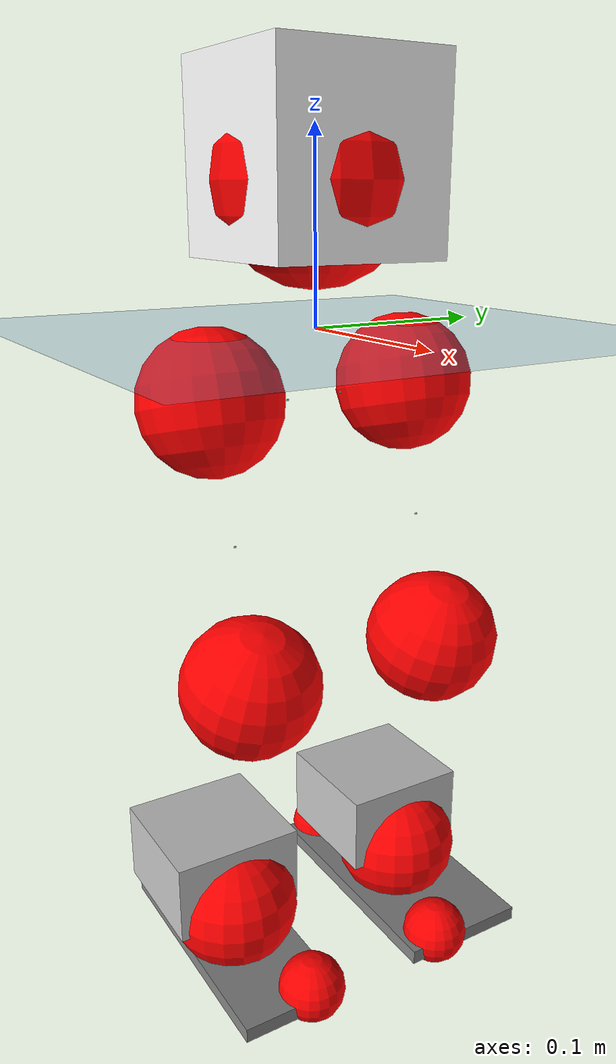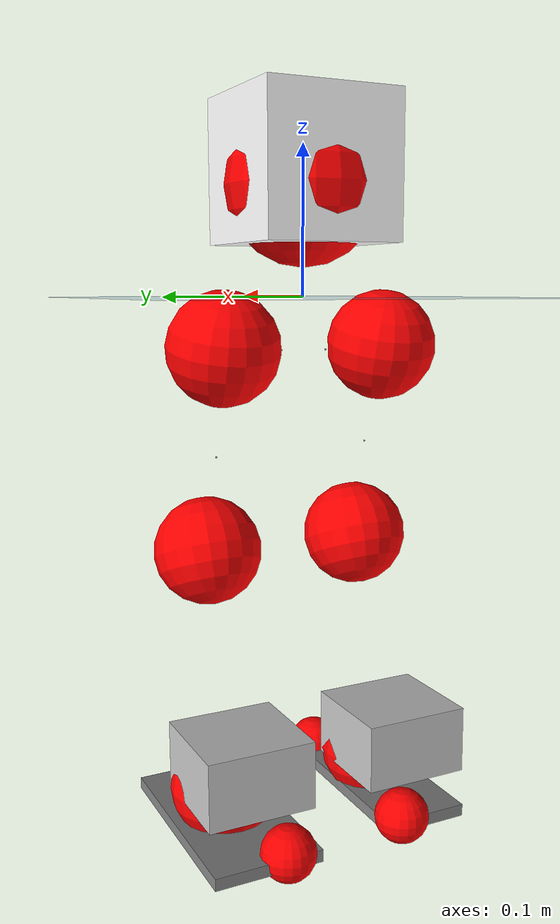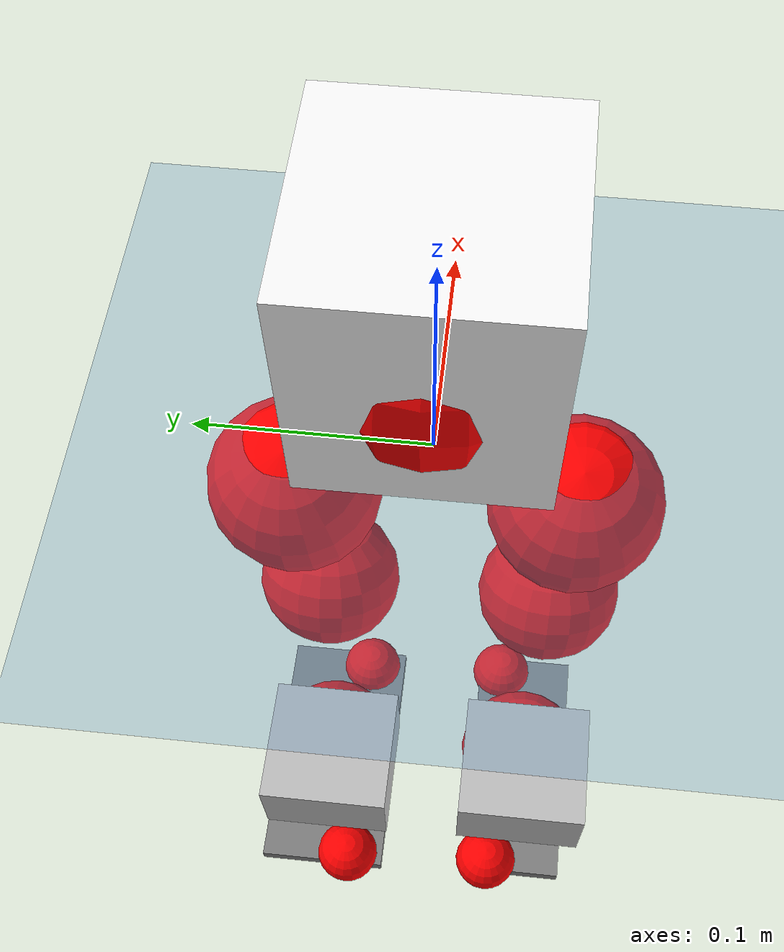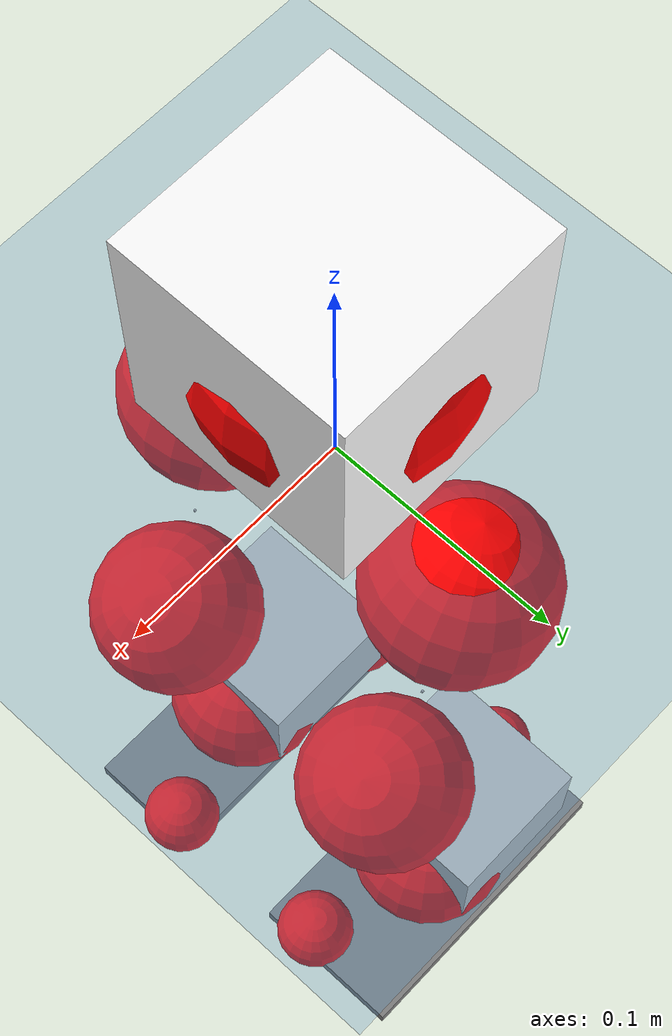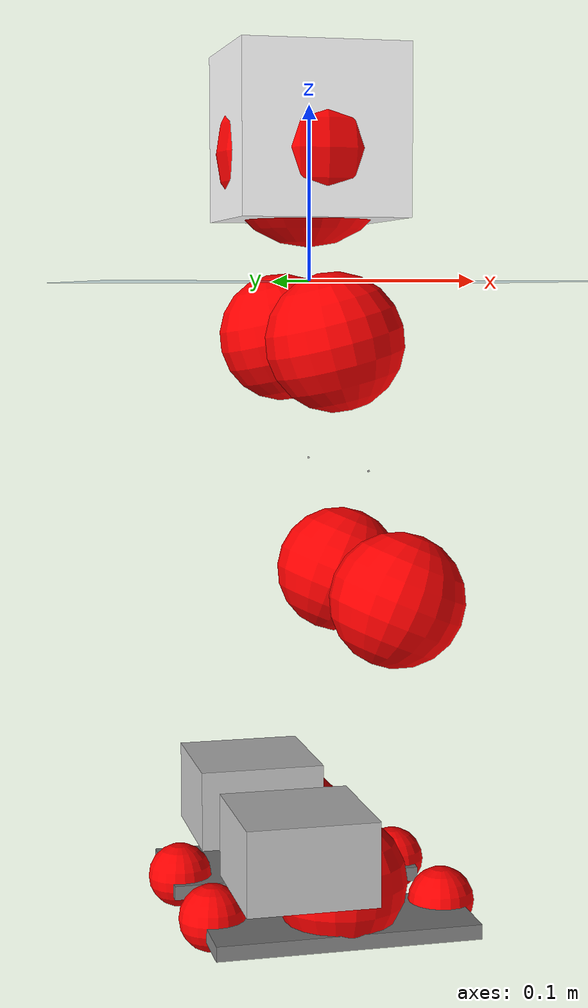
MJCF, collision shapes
<mujoco model="pi_12dof_release_v1">
  <compiler angle="radian" assetdir="assets" balanceinertia="true" inertiafromgeom="false"/>

  <option timestep="0.005" density="1.2" viscosity="2e-05"/>

  <size nkey="1"/>

  <visual>
    <quality shadowsize="8192"/>
    <map shadowclip="0.5"/>
  </visual>

  <default>
    <default class="/">
      <joint armature="0.01" damping="0.01" frictionloss="0.01"/>
      <geom contype="0" conaffinity="0" group="1" solref="-1000 -80"/>
      <site size="0.01 0.005 0.005" group="5"/>
      <general forcelimited="true" biastype="affine" gainprm="20" biasprm="0 -20 -0.5"/>
      <default class="foot">
        <geom size="0.0845 0.036 0.005" type="box" condim="6" group="4" priority="1" friction="0.9 0.2 0.2" solimp="0.015 1 0.005"/>
      </default>
      <default class="reward_collision_sphere">
        <geom group="5" rgba="1 0 0 1"/>
      </default>
    </default>
  </default>

  <asset>
    <texture type="skybox" colorspace="auto" name="//unnamed_texture_0" builtin="gradient" rgb1="0.95 0.95 0.95" rgb2="0.95 0.95 0.95" width="100" height="600"/>
    <texture type="2d" colorspace="auto" name="texplane" builtin="checker" rgb1="0.345 0.575 0.748" rgb2="0.345 0.575 0.748" markrgb="1 1 1" width="512" height="512"/>
    <material name="MatPlane" class="/" texture="texplane" texuniform="true" texrepeat="2 2" specular="0.9"/>
    <mesh name="baselink_1" class="/" file="baselink_1.STL"/>
    <mesh name="r_hip_pitch_link" class="/" file="r_hip_pitch_link.STL"/>
    <mesh name="r_hip_roll_link" class="/" file="r_hip_roll_link.STL"/>
    <mesh name="r_thigh_link" class="/" file="r_thigh_link.STL"/>
    <mesh name="r_calf_link" class="/" file="r_calf_link.STL"/>
    <mesh name="r_ankle_pitch_link" class="/" file="r_ankle_pitch_link.STL"/>
    <mesh name="r_ankle_roll_link" class="/" file="r_ankle_roll_link.STL"/>
    <mesh name="l_hip_pitch_link" class="/" file="l_hip_pitch_link.STL"/>
    <mesh name="l_hip_roll_link" class="/" file="l_hip_roll_link.STL"/>
    <mesh name="l_thigh_link" class="/" file="l_thigh_link.STL"/>
    <mesh name="l_calf_link" class="/" file="l_calf_link.STL"/>
    <mesh name="l_ankle_pitch_link" class="/" file="l_ankle_pitch_link.STL"/>
    <mesh name="l_ankle_roll_link" class="/" file="l_ankle_roll_link.STL"/>
  </asset>

  <worldbody>
    <geom name="floor" class="/" size="100 100 0.125" type="plane" group="0" material="MatPlane"/>
    <light name="toplight_shadow" class="/" pos="0 0 5" dir="0.0990148 0.0990148 -0.990148" type="directional" ambient="0.04 0.04 0.04" diffuse="0.55 0.55 0.55" specular="0.12 0.12 0.12"/>
    <light name="toplight_fill" class="/" pos="0 0 5" dir="0.0990148 0.0990148 -0.990148" type="directional" castshadow="false" ambient="0.04 0.04 0.04" diffuse="0.3 0.3 0.3" specular="0.08 0.08 0.08"/>
    <body name="trunk" pos="-0.000842944 -8.98243e-05 -0.00258458" quat="0.999999 -0.00130331 -0.000188029 -0.000355171">
      <inertial pos="0.000379538 0.00171251 0.043607" quat="0.70291 0.00954931 0.0180386 0.710986" mass="1.93342" diaginertia="0.0104739 0.00342574 0.00601877"/>
      <joint name="//unnamed_joint_0" type="free"/>
      <geom name="//unnamed_geom_1" class="/" type="mesh" density="0" rgba="1 1 1 1" mesh="baselink_1"/>
      <geom name="//unnamed_geom_2" class="/" size="0.048202 0.048202 0.048202" pos="0 0 0.0855341" type="box" rgba="1 1 1 1"/>
      <geom name="//unnamed_geom_3" class="reward_collision_sphere" size="0.0530222" pos="0 0 0.0748424"/>
      <site name="imu" class="/" pos="-0.0053616 0.0085162 -0.0130021" size="0.00964039"/>
      <camera name="track" class="/" pos="0 -1.63412 0" quat="0.707107 0.707107 0 0" mode="trackcom"/>
      <camera name="ego_camera" class="/" pos="0.075441 0 0.192452" quat="-0.5 -0.5 0.5 0.5"/>
      <body name="r_hip_pitch_link" pos="0.00242812 -0.018066 -0.0333836" quat="0.992198 8.12447e-07 -0.124675 3.36932e-06">
        <inertial pos="-0.00173896 -0.0461614 -0.00260993" quat="-0.0114698 0.700896 -0.0205417 0.712875" mass="0.324131" diaginertia="0.000112875 3.5248e-05 0.000113938"/>
        <joint name="r_hip_pitch_joint" class="/" pos="0 0 0" axis="-0.00340276 -0.999992 -0.00219705" range="-1.77166 1.26494" armature="0.00983338" damping="0.0121557" frictionloss="0.00913574"/>
        <geom name="//unnamed_geom_4" class="/" type="mesh" density="0" rgba="0.75294 0.75294 0.75294 1" mesh="r_hip_pitch_link"/>
        <geom name="//unnamed_geom_5" class="/" size="0.00048202 0.00048202 0.00048202" type="box" rgba="0.75294 0.75294 0.75294 1"/>
        <body name="r_hip_roll_link" pos="-0.00158156 -0.0436244 0.00264373" quat="1 -0.000146668 -0.000330612 -0.000304202">
          <inertial pos="-0.00223267 2.42997e-05 -0.0638368" quat="0.70604 -0.0809581 -0.0823259 0.698696" mass="0.332087" diaginertia="0.000327937 9.77653e-05 0.000167495"/>
          <joint name="r_hip_roll_joint" class="/" pos="0 0 0" axis="-0.99993 0.00522015 -0.0105809" stiffness="0.00206818" range="-0.125102 0.505568" armature="0.0084653" damping="0.0101313" frictionloss="0.0105307"/>
          <geom name="//unnamed_geom_6" class="/" type="mesh" density="0" rgba="0.75294 0.75294 0.75294 1" mesh="r_hip_roll_link"/>
          <geom name="//unnamed_geom_7" class="/" size="0.00048202 0.00048202 0.00048202" type="box" rgba="0.75294 0.75294 0.75294 1"/>
          <geom name="//unnamed_geom_8" class="reward_collision_sphere" size="0.0385616"/>
          <body name="r_thigh_link" pos="0.00135105 0.00155621 -0.0742216" quat="1 0.000305349 0.000495695 3.91907e-05">
            <inertial pos="-0.00200402 -0.00191158 -0.0517315" quat="0.738097 0.674694 0.000370966 -0.000726841" mass="0.100632" diaginertia="0.00012354 3.40426e-05 8.04811e-05"/>
            <joint name="r_thigh_joint" class="/" pos="0 0 0" axis="0.00297922 0.0029946 -0.999991" stiffness="0.00229322" range="-0.324843 0.646857" armature="0.00856021" damping="0.0165936" frictionloss="0.0101531"/>
            <geom name="//unnamed_geom_9" class="/" type="mesh" density="0" rgba="0.75294 0.75294 0.75294 1" mesh="r_thigh_link"/>
            <geom name="//unnamed_geom_10" class="/" size="0.00048202 0.00048202 0.00048202" type="box" rgba="0.75294 0.75294 0.75294 1"/>
            <body name="r_calf_link" pos="-0.00203207 -0.00133043 -0.0749469" quat="0.947412 -0.000981564 0.320015 -0.000255465">
              <inertial pos="-0.00105783 -0.00069155 -0.0750333" quat="0.999892 0.00168988 0.0106088 0.0100303" mass="0.756252" diaginertia="0.00359659 0.0012724 0.000242287"/>
              <joint name="r_calf_joint" class="/" pos="0 0 0" axis="2.30067e-05 -0.999995 -0.00306619" stiffness="0.000307022" range="-1.65091 0.675446" armature="0.00958473" damping="0.0109638" frictionloss="0.00945294"/>
              <geom name="//unnamed_geom_11" class="/" type="mesh" density="0" rgba="0.75294 0.75294 0.75294 1" mesh="r_calf_link"/>
              <geom name="//unnamed_geom_12" class="/" size="0.00048202 0.00048202 0.00048202" type="box" rgba="0.75294 0.75294 0.75294 1"/>
              <geom name="//unnamed_geom_13" class="reward_collision_sphere" size="0.0385616"/>
              <body name="r_ankle_pitch_link" pos="0.00176965 3.38152e-05 -0.150842" quat="0.980067 -0.000491962 -0.198669 -5.90238e-05">
                <inertial pos="0.00385925 0.0029534 -3.89823e-05" quat="0.00336276 0.709237 -0.00255404 0.704957" mass="0.162503" diaginertia="0.000318184 7.79865e-05 0.000168594"/>
                <joint name="r_ankle_pitch_joint" class="/" pos="0 0 0" axis="0.00348542 -0.999963 0.00782335" range="-1.32728 0.505556" armature="0.0095554" damping="0.0218672" frictionloss="0.00914211"/>
                <geom name="//unnamed_geom_14" class="/" type="mesh" density="0" rgba="0.75294 0.75294 0.75294 1" mesh="r_ankle_pitch_link"/>
                <geom name="//unnamed_geom_15" class="/" size="0.0375975 0.0385616 0.024101" type="box" rgba="0.75294 0.75294 0.75294 1"/>
                <body name="r_ankle_roll_link" pos="0.0747455 0.00177455 0.000808792" quat="1 -0.000130792 0.000464551 -0.000312339">
                  <inertial pos="-0.0231967 -0.00261922 -0.013025" quat="0.555222 0.428917 0.444922 0.5566" mass="0.4546" diaginertia="0.00112482 0.000375182 0.000372676"/>
                  <joint name="r_ankle_roll_joint" class="/" pos="0 0 0" axis="-0.999999 -0.00136165 0.000500575" range="-0.197879 0.186759" armature="0.00831915" damping="0" frictionloss="0.00833138"/>
                  <geom name="//unnamed_geom_16" class="/" type="mesh" density="0" rgba="0.75294 0.75294 0.75294 1" mesh="r_ankle_roll_link"/>
                  <geom name="//unnamed_geom_17" class="/" type="mesh" rgba="0.75294 0.75294 0.75294 1" mesh="r_ankle_roll_link"/>
                  <geom name="right_foot" class="foot" size="0.0759898 0.0307852 0.00428541" pos="-0.0512999 0 -0.0470438"/>
                  <geom name="//unnamed_geom_19" class="reward_collision_sphere" size="0.0385616" pos="-0.050294 0 -0.0213835"/>
                  <geom name="//unnamed_geom_20" class="reward_collision_sphere" size="0.0192808" pos="0.0150882 0.0163412 -0.0427671"/>
                  <geom name="//unnamed_geom_21" class="reward_collision_sphere" size="0.0192808" pos="-0.120706 0.0163412 -0.0427671"/>
                  <site name="right_foot" class="foot" pos="-0.0512999 0 -0.0470438" size="0.00964039"/>
                </body>
              </body>
            </body>
          </body>
        </body>
      </body>
      <body name="l_hip_pitch_link" pos="-0.000514601 0.016918 -0.0329112" quat="0.992213 0.000143795 -0.124554 4.3536e-06">
        <inertial pos="0.000483035 0.0412007 -0.00238191" quat="-0.0390504 0.706158 0.0285162 0.706401" mass="0.344665" diaginertia="0.000127744 3.76332e-05 0.000133346"/>
        <joint name="l_hip_pitch_joint" class="/" pos="0 0 0" axis="0.0148117 0.99989 -5.89421e-05" range="-1.29915 1.72817" armature="0.00958147" damping="0" frictionloss="0.0102892"/>
        <geom name="//unnamed_geom_22" class="/" type="mesh" density="0" rgba="0.75294 0.75294 0.75294 1" mesh="l_hip_pitch_link"/>
        <geom name="//unnamed_geom_23" class="/" size="0.00048202 0.00048202 0.00048202" type="box" rgba="0.75294 0.75294 0.75294 1"/>
        <body name="l_hip_roll_link" pos="-0.000885482 0.0429041 0.00219836" quat="0.999999 -0.000847891 0.000761921 0.000306058">
          <inertial pos="0.000774718 -0.00256143 -0.067721" quat="0.699449 -0.0754744 -0.0779355 0.7064" mass="0.356797" diaginertia="0.000364893 0.000102696 0.000189876"/>
          <joint name="l_hip_roll_joint" class="/" pos="0 0 0" axis="-0.999994 -0.00300479 0.0016068" range="-0.498248 0.0811154" armature="0.00857223" damping="0.0150595" frictionloss="0.00968142"/>
          <geom name="//unnamed_geom_24" class="/" type="mesh" density="0" rgba="0.75294 0.75294 0.75294 1" mesh="l_hip_roll_link"/>
          <geom name="//unnamed_geom_25" class="/" size="0.00048202 0.00048202 0.00048202" type="box" rgba="0.75294 0.75294 0.75294 1"/>
          <geom name="//unnamed_geom_26" class="reward_collision_sphere" size="0.0385616"/>
          <body name="l_thigh_link" pos="-0.00244805 0.000188935 -0.0760949" quat="0.999999 0.000254003 -0.00112617 -0.000541443">
            <inertial pos="-0.00214114 0.00032113 -0.0534574" quat="0.668954 0.743226 0.00136911 0.0106476" mass="0.0982875" diaginertia="0.000124615 3.29314e-05 7.90844e-05"/>
            <joint name="l_thigh_joint" class="/" pos="0 0 0" axis="0.001636 -0.000555019 -0.999999" range="-0.609871 0.323149" armature="0.00994942" damping="0.00290513" frictionloss="0.0108472"/>
            <geom name="//unnamed_geom_27" class="/" type="mesh" density="0" rgba="0.75294 0.75294 0.75294 1" mesh="l_thigh_link"/>
            <geom name="//unnamed_geom_28" class="/" size="0.00048202 0.00048202 0.00048202" type="box" rgba="0.75294 0.75294 0.75294 1"/>
            <body name="l_calf_link" pos="0.00135564 -0.000151516 -0.0728368" quat="0.947618 -1.16971e-05 0.319406 -1.88943e-05">
              <inertial pos="-0.00231925 0.000435372 -0.075608" quat="0.999927 0.00279677 -0.0113581 -0.00316898" mass="0.731176" diaginertia="0.0038691 0.00132458 0.000256027"/>
              <joint name="l_calf_joint" class="/" pos="0 0 0" axis="0.00647439 0.999955 -0.00690173" range="-0.705056 1.7074" armature="0.00928175" damping="0" frictionloss="0.0106348"/>
              <geom name="//unnamed_geom_29" class="/" type="mesh" density="0" rgba="0.75294 0.75294 0.75294 1" mesh="l_calf_link"/>
              <geom name="//unnamed_geom_30" class="/" size="0.00048202 0.00048202 0.00048202" type="box" rgba="0.75294 0.75294 0.75294 1"/>
              <geom name="//unnamed_geom_31" class="reward_collision_sphere" size="0.0385616"/>
              <body name="l_ankle_pitch_link" pos="0.00176181 0.000730201 -0.150452" quat="0.980068 -0.000131618 -0.198661 -0.000535204">
                <inertial pos="0.0059108 -0.00258868 -0.00281678" quat="0.00688596 0.707154 -0.00338897 0.707018" mass="0.1536" diaginertia="0.000329452 8.09042e-05 0.000166301"/>
                <joint name="l_ankle_pitch_joint" class="/" pos="0 0 0" axis="0.00102618 0.999995 -0.00307942" stiffness="0.0102472" range="-0.550505 1.2983" armature="0.00929086" damping="0" frictionloss="0.00837414"/>
                <geom name="//unnamed_geom_32" class="/" type="mesh" density="0" rgba="0.75294 0.75294 0.75294 1" mesh="l_ankle_pitch_link"/>
                <geom name="//unnamed_geom_33" class="/" size="0.0375975 0.0385616 0.024101" type="box" rgba="0.75294 0.75294 0.75294 1"/>
                <body name="l_ankle_roll_link" pos="0.0733596 0.00309352 -0.0026582" quat="0.999999 8.69854e-05 -0.000448563 0.00106641">
                  <inertial pos="-0.0246455 -0.000507548 -0.0162218" quat="0.554625 0.423512 0.434378 0.569513" mass="0.481767" diaginertia="0.00120779 0.00039063 0.000391115"/>
                  <joint name="l_ankle_roll_joint" class="/" pos="0 0 0" axis="-1 0.000272097 -0.000312069" stiffness="0.00317659" range="-0.16861 0.105672" armature="0.0095348" damping="0" frictionloss="0.00912343"/>
                  <geom name="//unnamed_geom_34" class="/" type="mesh" density="0" rgba="0.75294 0.75294 0.75294 1" mesh="l_ankle_roll_link"/>
                  <geom name="//unnamed_geom_35" class="/" type="mesh" rgba="0.75294 0.75294 0.75294 1" mesh="l_ankle_roll_link"/>
                  <geom name="left_foot" class="foot" size="0.0763679 0.0389267 0.00430693" pos="-0.0512999 0 -0.0470438"/>
                  <geom name="//unnamed_geom_37" class="reward_collision_sphere" size="0.0385616" pos="-0.050294 0 -0.0213835"/>
                  <geom name="//unnamed_geom_38" class="reward_collision_sphere" size="0.0192808" pos="0.0150882 -0.0163412 -0.0427671"/>
                  <geom name="//unnamed_geom_39" class="reward_collision_sphere" size="0.0192808" pos="-0.120706 -0.0163412 -0.0427671"/>
                  <site name="left_foot" class="foot" pos="-0.0512999 0 -0.0470438" size="0.00964039"/>
                </body>
              </body>
            </body>
          </body>
        </body>
      </body>
    </body>
  </worldbody>

  <contact>
    <pair class="/" geom1="floor" geom2="right_foot" name="//unnamed_contact_1"/>
    <pair class="/" geom1="floor" geom2="left_foot" name="//unnamed_contact_0"/>
  </contact>

  <actuator>
    <general name="r_hip_pitch_joint" class="/" joint="r_hip_pitch_joint" forcerange="-22.3727 22.3727" gainprm="18.2158" biasprm="0 -18.2158 -0.450629"/>
    <general name="r_hip_roll_joint" class="/" joint="r_hip_roll_joint" forcerange="-18.4042 18.4042" gainprm="18.2158" biasprm="0 -18.2158 -0.450629"/>
    <general name="r_thigh_joint" class="/" joint="r_thigh_joint" forcerange="-20.3363 20.3363" gainprm="18.2158" biasprm="0 -18.2158 -0.450629"/>
    <general name="r_calf_joint" class="/" joint="r_calf_joint" forcerange="-21.9916 21.9916" gainprm="18.2158" biasprm="0 -18.2158 -0.450629"/>
    <general name="r_ankle_pitch_joint" class="/" joint="r_ankle_pitch_joint" forcerange="-19.6955 19.6955" gainprm="18.2158" biasprm="0 -18.2158 -0.450629"/>
    <general name="r_ankle_roll_joint" class="/" joint="r_ankle_roll_joint" forcerange="-18.348 18.348" gainprm="18.2158" biasprm="0 -18.2158 -0.450629"/>
    <general name="l_hip_pitch_joint" class="/" joint="l_hip_pitch_joint" forcerange="-20.0985 20.0985" gainprm="18.2158" biasprm="0 -18.2158 -0.450629"/>
    <general name="l_hip_roll_joint" class="/" joint="l_hip_roll_joint" forcerange="-19.4529 19.4529" gainprm="18.2158" biasprm="0 -18.2158 -0.450629"/>
    <general name="l_thigh_joint" class="/" joint="l_thigh_joint" forcerange="-21.45 21.45" gainprm="18.2158" biasprm="0 -18.2158 -0.450629"/>
    <general name="l_calf_joint" class="/" joint="l_calf_joint" forcerange="-21.0187 21.0187" gainprm="18.2158" biasprm="0 -18.2158 -0.450629"/>
    <general name="l_ankle_pitch_joint" class="/" joint="l_ankle_pitch_joint" forcerange="-21.2926 21.2926" gainprm="18.2158" biasprm="0 -18.2158 -0.450629"/>
    <general name="l_ankle_roll_joint" class="/" joint="l_ankle_roll_joint" forcerange="-20.0043 20.0043" gainprm="18.2158" biasprm="0 -18.2158 -0.450629"/>
  </actuator>

  <sensor>
    <gyro site="imu" name="imu_angular_velocity"/>
    <velocimeter site="imu" name="imu_linear_velocity"/>
    <framelinvel objtype="site" objname="left_foot" name="left_foot_global_linear_velocity"/>
    <framelinvel objtype="site" objname="right_foot" name="right_foot_global_linear_velocity"/>
  </sensor>

  <keyframe>
    <key name="home" qpos="0 0 0.291 1 0 0 0 0.4 0 0 -0.8 0.4 0 -0.4 0 0 0.8 -0.4 0"/>
  </keyframe>
</mujoco>
